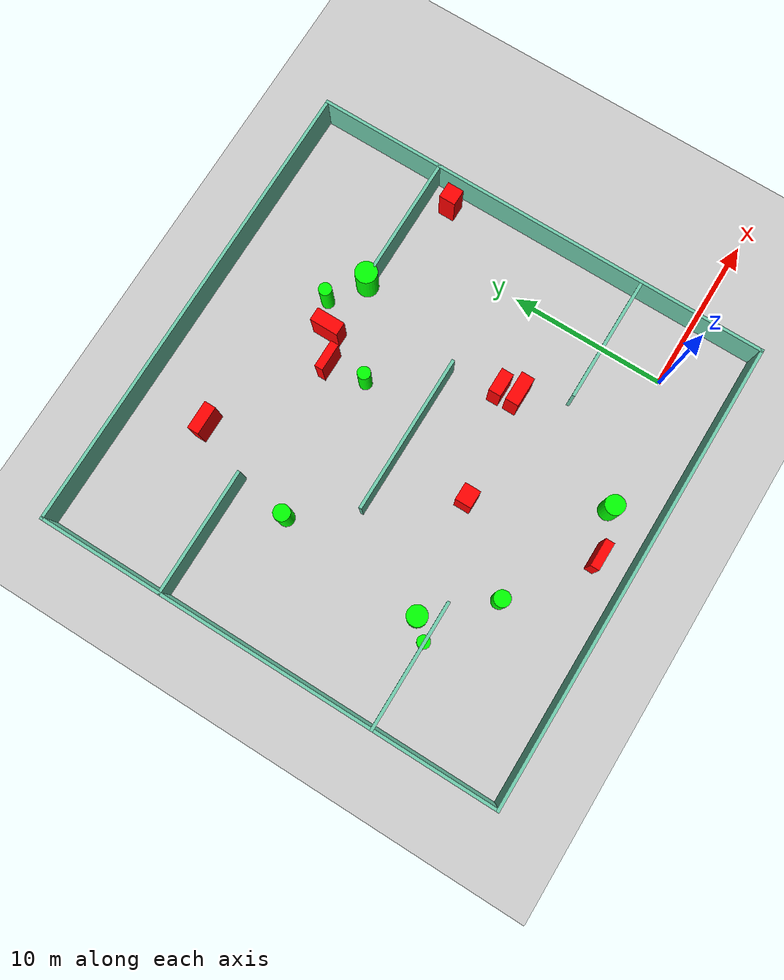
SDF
<sdf version="1.7">
 <world name="default">
  <light name="sun" type="directional">
   <pose>0 0 10 0 -0 0</pose>
   <diffuse>0.8 0.8 0.8 1</diffuse>
   <specular>0.2 0.2 0.2 1</specular>
   <attenuation>
    <range>1000</range>
    <constant>0.9</constant>
    <linear>0.01</linear>
    <quadratic>0.001</quadratic>
   </attenuation>
   <direction>-0.5 0.1 -0.9</direction>
   <spot><inner_angle>0</inner_angle><outer_angle>0</outer_angle><falloff>0</falloff></spot>
  </light>
  <model name="ground_plane">
   <static>1</static>
   <link name="link">
    <collision name="collision">
     <geometry><plane><normal>0 0 1</normal><size>100 100</size></plane></geometry>
     <surface>
      <contact><collide_bitmask>65535</collide_bitmask></contact>
      <friction><ode><mu>100</mu><mu2>50</mu2></ode></friction>
     </surface>
    </collision>
    <visual name="visual">
     <cast_shadows>0</cast_shadows>
     <geometry><plane><normal>0 0 1</normal><size>100 100</size></plane></geometry>
     <material>
      <script><uri>file://media/materials/scripts/gazebo.material</uri><name>Gazebo/Grey</name></script>
     </material>
    </visual>
   </link>
  </model>
  <gravity>0 0 -9.8</gravity>
  <magnetic_field>6e-06 2.3e-05 -4.2e-05</magnetic_field>
  <atmosphere type="adiabatic"/>
  <physics type="ode">
   <max_step_size>0.001</max_step_size>
   <real_time_factor>1</real_time_factor>
   <real_time_update_rate>1000</real_time_update_rate>
  </physics>
  <scene><ambient>0.4 0.4 0.4 1</ambient><background>0.7 0.7 0.7 1</background><shadows>1</shadows></scene>
  <spherical_coordinates>
   <surface_model>EARTH_WGS84</surface_model>
   <latitude_deg>0</latitude_deg>
   <longitude_deg>0</longitude_deg>
   <elevation>0</elevation>
   <heading_deg>0</heading_deg>
  </spherical_coordinates>
  <model name="my_base_walls">
   <link name="Wall_10">
    <collision name="Wall_10_Collision">
     <geometry><box><size>8.2 0.2 2.5</size></box></geometry>
     <pose>0 0 1.25 0 -0 0</pose>
    </collision>
    <visual name="Wall_10_Visual">
     <pose>0 0 1.25 0 -0 0</pose>
     <geometry><box><size>8.2 0.2 2.5</size></box></geometry>
     <material>
      <script><uri>file://media/materials/scripts/gazebo.material</uri><name>Gazebo/Grey</name></script>
      <ambient>0.435294 0.796078 0.67451 1</ambient>
     </material>
     <meta><layer>0</layer></meta>
    </visual>
    <pose>-11 -7 0 0 -0 0</pose>
   </link>
   <link name="Wall_12">
    <collision name="Wall_12_Collision">
     <geometry><box><size>8.2 0.2 2.5</size></box></geometry>
     <pose>0 0 1.25 0 -0 0</pose>
    </collision>
    <visual name="Wall_12_Visual">
     <pose>0 0 1.25 0 -0 0</pose>
     <geometry><box><size>8.2 0.2 2.5</size></box></geometry>
     <material>
      <script><uri>file://media/materials/scripts/gazebo.material</uri><name>Gazebo/Grey</name></script>
      <ambient>0.435294 0.796078 0.67451 1</ambient>
     </material>
     <meta><layer>0</layer></meta>
    </visual>
    <pose>-11 7 0 0 -0 0</pose>
   </link>
   <link name="Wall_14">
    <collision name="Wall_14_Collision">
     <geometry><box><size>8.2 0.2 2.5</size></box></geometry>
     <pose>0 0 1.25 0 -0 0</pose>
    </collision>
    <visual name="Wall_14_Visual">
     <pose>0 0 1.25 0 -0 0</pose>
     <geometry><box><size>8.2 0.2 2.5</size></box></geometry>
     <material>
      <script><uri>file://media/materials/scripts/gazebo.material</uri><name>Gazebo/Grey</name></script>
      <ambient>0.435294 0.796078 0.67451 1</ambient>
     </material>
     <meta><layer>0</layer></meta>
    </visual>
    <pose>11 7 0 0 -0 3.14159</pose>
   </link>
   <link name="Wall_16">
    <collision name="Wall_16_Collision">
     <geometry><box><size>10.2 0.2 2.5</size></box></geometry>
     <pose>0 0 1.25 0 -0 0</pose>
    </collision>
    <visual name="Wall_16_Visual">
     <pose>0 0 1.25 0 -0 0</pose>
     <geometry><box><size>10.2 0.2 2.5</size></box></geometry>
     <material>
      <script><uri>file://media/materials/scripts/gazebo.material</uri><name>Gazebo/Grey</name></script>
      <ambient>0.435294 0.796078 0.67451 1</ambient>
     </material>
     <meta><layer>0</layer></meta>
    </visual>
    <pose>0 0 0 0 -0 3.14159</pose>
   </link>
   <link name="Wall_2">
    <collision name="Wall_2_Collision">
     <geometry><box><size>30.2 0.2 2.5</size></box></geometry>
     <pose>0 0 1.25 0 -0 0</pose>
    </collision>
    <visual name="Wall_2_Visual">
     <pose>0 0 1.25 0 -0 0</pose>
     <geometry><box><size>30.2 0.2 2.5</size></box></geometry>
     <material>
      <script><uri>file://media/materials/scripts/gazebo.material</uri><name>Gazebo/Grey</name></script>
      <ambient>0.435294 0.796078 0.67451 1</ambient>
     </material>
     <meta><layer>0</layer></meta>
    </visual>
    <pose>0 -15 0 0 -0 3.14159</pose>
   </link>
   <link name="Wall_3">
    <collision name="Wall_3_Collision">
     <geometry><box><size>30.2 0.2 2.5</size></box></geometry>
     <pose>0 0 1.25 0 -0 0</pose>
    </collision>
    <visual name="Wall_3_Visual">
     <pose>0 0 1.25 0 -0 0</pose>
     <geometry><box><size>30.2 0.2 2.5</size></box></geometry>
     <material>
      <script><uri>file://media/materials/scripts/gazebo.material</uri><name>Gazebo/Grey</name></script>
      <ambient>0.435294 0.796078 0.67451 1</ambient>
     </material>
     <meta><layer>0</layer></meta>
    </visual>
    <pose>-15 0 0 0 -0 1.5708</pose>
   </link>
   <link name="Wall_4">
    <collision name="Wall_4_Collision">
     <geometry><box><size>30.2 0.2 2.5</size></box></geometry>
     <pose>0 0 1.25 0 -0 0</pose>
    </collision>
    <visual name="Wall_4_Visual">
     <pose>0 0 1.25 0 -0 0</pose>
     <geometry><box><size>30.2 0.2 2.5</size></box></geometry>
     <material>
      <script><uri>file://media/materials/scripts/gazebo.material</uri><name>Gazebo/Grey</name></script>
      <ambient>0.435294 0.796078 0.67451 1</ambient>
     </material>
     <meta><layer>0</layer></meta>
    </visual>
    <pose>0 15 0 0 -0 0</pose>
   </link>
   <link name="Wall_6">
    <collision name="Wall_6_Collision">
     <geometry><box><size>30.2 0.2 2.5</size></box></geometry>
     <pose>0 0 1.25 0 -0 0</pose>
    </collision>
    <visual name="Wall_6_Visual">
     <pose>0 0 1.25 0 -0 0</pose>
     <geometry><box><size>30.2 0.2 2.5</size></box></geometry>
     <material>
      <script><uri>file://media/materials/scripts/gazebo.material</uri><name>Gazebo/Grey</name></script>
      <ambient>0.435294 0.796078 0.67451 1</ambient>
     </material>
     <meta><layer>0</layer></meta>
    </visual>
    <pose>15 0 0 0 -0 1.5708</pose>
   </link>
   <link name="Wall_8">
    <collision name="Wall_8_Collision">
     <geometry><box><size>8.2 0.2 2.5</size></box></geometry>
     <pose>0 0 1.25 0 -0 0</pose>
    </collision>
    <visual name="Wall_8_Visual">
     <pose>0 0 1.25 0 -0 0</pose>
     <geometry><box><size>8.2 0.2 2.5</size></box></geometry>
     <material>
      <script><uri>file://media/materials/scripts/gazebo.material</uri><name>Gazebo/Grey</name></script>
      <ambient>0.435294 0.796078 0.67451 1</ambient>
     </material>
     <meta><layer>0</layer></meta>
    </visual>
    <pose>11 -7 0 0 -0 3.14159</pose>
   </link>
   <static>1</static>
   <pose>-11 11 0 0 -0 0</pose>
  </model>
  <model name="cylinder1">
   <static>1</static>
   <link name="link">
    <inertial>
     <mass>1</mass>
     <inertia><ixx>0.5</ixx><ixy>0</ixy><ixz>0</ixz><iyy>0.5</iyy><iyz>0</iyz><izz>1</izz></inertia>
    </inertial>
    <collision name="collision">
     <geometry><cylinder><radius>0.6325697757814563</radius><length>2.5</length></cylinder></geometry>
    </collision>
    <visual name="visual">
     <geometry><cylinder><radius>0.6325697757814563</radius><length>2.5</length></cylinder></geometry>
     <material>
      <ambient>0 1 0 1</ambient>
      <diffuse>0 1 0 1</diffuse>
      <specular>0.1 0.1 0.1 1</specular>
      <emissive>0 0 0 0</emissive>
     </material>
    </visual>
   </link>
   <pose>-19.505224780085193 5.1049068621273825 1.25 0 0 0</pose>
  </model>
  <model name="cylinder2">
   <static>1</static>
   <link name="link">
    <inertial>
     <mass>1</mass>
     <inertia><ixx>0.5</ixx><ixy>0</ixy><ixz>0</ixz><iyy>0.5</iyy><iyz>0</iyz><izz>1</izz></inertia>
    </inertial>
    <collision name="collision">
     <geometry><cylinder><radius>0.40173289101197013</radius><length>2.5</length></cylinder></geometry>
    </collision>
    <visual name="visual">
     <geometry><cylinder><radius>0.40173289101197013</radius><length>2.5</length></cylinder></geometry>
     <material>
      <ambient>0 1 0 1</ambient>
      <diffuse>0 1 0 1</diffuse>
      <specular>0.1 0.1 0.1 1</specular>
      <emissive>0 0 0 0</emissive>
     </material>
    </visual>
   </link>
   <pose>-20.5317450168027 4.053771220486489 1.25 0 0 0</pose>
  </model>
  <model name="cylinder3">
   <static>1</static>
   <link name="link">
    <inertial>
     <mass>1</mass>
     <inertia><ixx>0.5</ixx><ixy>0</ixy><ixz>0</ixz><iyy>0.5</iyy><iyz>0</iyz><izz>1</izz></inertia>
    </inertial>
    <collision name="collision">
     <geometry><cylinder><radius>0.5216230944143454</radius><length>2.5</length></cylinder></geometry>
    </collision>
    <visual name="visual">
     <geometry><cylinder><radius>0.5216230944143454</radius><length>2.5</length></cylinder></geometry>
     <material>
      <ambient>0 1 0 1</ambient>
      <diffuse>0 1 0 1</diffuse>
      <specular>0.1 0.1 0.1 1</specular>
      <emissive>0 0 0 0</emissive>
     </material>
    </visual>
   </link>
   <pose>-18.62582001643144 14.63782390426006 1.25 0 0 0</pose>
  </model>
  <model name="cylinder4">
   <static>1</static>
   <link name="link">
    <inertial>
     <mass>1</mass>
     <inertia><ixx>0.5</ixx><ixy>0</ixy><ixz>0</ixz><iyy>0.5</iyy><iyz>0</iyz><izz>1</izz></inertia>
    </inertial>
    <collision name="collision">
     <geometry><cylinder><radius>0.4103274243022824</radius><length>2.5</length></cylinder></geometry>
    </collision>
    <visual name="visual">
     <geometry><cylinder><radius>0.4103274243022824</radius><length>2.5</length></cylinder></geometry>
     <material>
      <ambient>0 1 0 1</ambient>
      <diffuse>0 1 0 1</diffuse>
      <specular>0.1 0.1 0.1 1</specular>
      <emissive>0 0 0 0</emissive>
     </material>
    </visual>
   </link>
   <pose>-9.292394849176507 15.016661860880305 1.25 0 0 0</pose>
  </model>
  <model name="cylinder5">
   <static>1</static>
   <link name="link">
    <inertial>
     <mass>1</mass>
     <inertia><ixx>0.5</ixx><ixy>0</ixy><ixz>0</ixz><iyy>0.5</iyy><iyz>0</iyz><izz>1</izz></inertia>
    </inertial>
    <collision name="collision">
     <geometry><cylinder><radius>0.4085831700657161</radius><length>2.5</length></cylinder></geometry>
    </collision>
    <visual name="visual">
     <geometry><cylinder><radius>0.4085831700657161</radius><length>2.5</length></cylinder></geometry>
     <material>
      <ambient>0 1 0 1</ambient>
      <diffuse>0 1 0 1</diffuse>
      <specular>0.1 0.1 0.1 1</specular>
      <emissive>0 0 0 0</emissive>
     </material>
    </visual>
   </link>
   <pose>-6.178337498701161 19.67866425020443 1.25 0 0 0</pose>
  </model>
  <model name="cylinder6">
   <static>1</static>
   <link name="link">
    <inertial>
     <mass>1</mass>
     <inertia><ixx>0.5</ixx><ixy>0</ixy><ixz>0</ixz><iyy>0.5</iyy><iyz>0</iyz><izz>1</izz></inertia>
    </inertial>
    <collision name="collision">
     <geometry><cylinder><radius>0.5095919048869062</radius><length>2.5</length></cylinder></geometry>
    </collision>
    <visual name="visual">
     <geometry><cylinder><radius>0.5095919048869062</radius><length>2.5</length></cylinder></geometry>
     <material>
      <ambient>0 1 0 1</ambient>
      <diffuse>0 1 0 1</diffuse>
      <specular>0.1 0.1 0.1 1</specular>
      <emissive>0 0 0 0</emissive>
     </material>
    </visual>
   </link>
   <pose>-16.21095405447989 1.5647244906020212 1.25 0 0 0</pose>
  </model>
  <model name="cylinder7">
   <static>1</static>
   <link name="link">
    <inertial>
     <mass>1</mass>
     <inertia><ixx>0.5</ixx><ixy>0</ixy><ixz>0</ixz><iyy>0.5</iyy><iyz>0</iyz><izz>1</izz></inertia>
    </inertial>
    <collision name="collision">
     <geometry><cylinder><radius>0.6968690253352717</radius><length>2.5</length></cylinder></geometry>
    </collision>
    <visual name="visual">
     <geometry><cylinder><radius>0.6968690253352717</radius><length>2.5</length></cylinder></geometry>
     <material>
      <ambient>0 1 0 1</ambient>
      <diffuse>0 1 0 1</diffuse>
      <specular>0.1 0.1 0.1 1</specular>
      <emissive>0 0 0 0</emissive>
     </material>
    </visual>
   </link>
   <pose>-4.039233347050908 18.170822488954386 1.25 0 0 0</pose>
  </model>
  <model name="cylinder8">
   <static>1</static>
   <link name="link">
    <inertial>
     <mass>1</mass>
     <inertia><ixx>0.5</ixx><ixy>0</ixy><ixz>0</ixz><iyy>0.5</iyy><iyz>0</iyz><izz>1</izz></inertia>
    </inertial>
    <collision name="collision">
     <geometry><cylinder><radius>0.6131796713044495</radius><length>2.5</length></cylinder></geometry>
    </collision>
    <visual name="visual">
     <geometry><cylinder><radius>0.6131796713044495</radius><length>2.5</length></cylinder></geometry>
     <material>
      <ambient>0 1 0 1</ambient>
      <diffuse>0 1 0 1</diffuse>
      <specular>0.1 0.1 0.1 1</specular>
      <emissive>0 0 0 0</emissive>
     </material>
    </visual>
   </link>
   <pose>-8.347913297689566 -1.1894641730028943 1.25 0 0 0</pose>
  </model>
  <model name="box1">
   <static>1</static>
   <link name="link">
    <inertial>
     <mass>1</mass>
     <inertia><ixx>0.083</ixx><ixy>0</ixy><ixz>0</ixz><iyy>0.083</iyy><iyz>0</iyz><izz>0.083</izz></inertia>
    </inertial>
    <collision name="collision">
     <geometry><box><size>0.8526393377195678 1.831514056432484 2.5</size></box></geometry>
    </collision>
    <visual name="visual">
     <geometry><box><size>0.8526393377195678 1.831514056432484 2.5</size></box></geometry>
     <material>
      <ambient>1 0 0 1</ambient>
      <diffuse>1 0 0 1</diffuse>
      <specular>0.1 0.1 0.1 1</specular>
      <emissive>0 0 0 0</emissive>
     </material>
    </visual>
    <sensor name="my_contact" type="contact">
     <contact><collision>box_collision</collision><topic>__default_topic__</topic></contact>
    </sensor>
   </link>
   <pose>-7.780096416396349 18.506658113280924 1.25 0 0 0</pose>
  </model>
  <model name="box2">
   <static>1</static>
   <link name="link">
    <inertial>
     <mass>1</mass>
     <inertia><ixx>0.083</ixx><ixy>0</ixy><ixz>0</ixz><iyy>0.083</iyy><iyz>0</iyz><izz>0.083</izz></inertia>
    </inertial>
    <collision name="collision">
     <geometry><box><size>1.7677450465691815 0.5290525430872424 2.5</size></box></geometry>
    </collision>
    <visual name="visual">
     <geometry><box><size>1.7677450465691815 0.5290525430872424 2.5</size></box></geometry>
     <material>
      <ambient>1 0 0 1</ambient>
      <diffuse>1 0 0 1</diffuse>
      <specular>0.1 0.1 0.1 1</specular>
      <emissive>0 0 0 0</emissive>
     </material>
    </visual>
    <sensor name="my_contact" type="contact">
     <contact><collision>box_collision</collision><topic>__default_topic__</topic></contact>
    </sensor>
   </link>
   <pose>-9.536492092163044 17.42823035283055 1.25 0 0 0</pose>
  </model>
  <model name="box3">
   <static>1</static>
   <link name="link">
    <inertial>
     <mass>1</mass>
     <inertia><ixx>0.083</ixx><ixy>0</ixy><ixz>0</ixz><iyy>0.083</iyy><iyz>0</iyz><izz>0.083</izz></inertia>
    </inertial>
    <collision name="collision">
     <geometry><box><size>1.7839892114821225 0.5663711240990119 2.5</size></box></geometry>
    </collision>
    <visual name="visual">
     <geometry><box><size>1.7839892114821225 0.5663711240990119 2.5</size></box></geometry>
     <material>
      <ambient>1 0 0 1</ambient>
      <diffuse>1 0 0 1</diffuse>
      <specular>0.1 0.1 0.1 1</specular>
      <emissive>0 0 0 0</emissive>
     </material>
    </visual>
    <sensor name="my_contact" type="contact">
     <contact><collision>box_collision</collision><topic>__default_topic__</topic></contact>
    </sensor>
   </link>
   <pose>-11.150664945340047 -1.9673109626688352 1.25 0 0 0</pose>
  </model>
  <model name="box4">
   <static>1</static>
   <link name="link">
    <inertial>
     <mass>1</mass>
     <inertia><ixx>0.083</ixx><ixy>0</ixy><ixz>0</ixz><iyy>0.083</iyy><iyz>0</iyz><izz>0.083</izz></inertia>
    </inertial>
    <collision name="collision">
     <geometry><box><size>1.89623199195968 0.8549265784721498 2.5</size></box></geometry>
    </collision>
    <visual name="visual">
     <geometry><box><size>1.89623199195968 0.8549265784721498 2.5</size></box></geometry>
     <material>
      <ambient>1 0 0 1</ambient>
      <diffuse>1 0 0 1</diffuse>
      <specular>0.1 0.1 0.1 1</specular>
      <emissive>0 0 0 0</emissive>
     </material>
    </visual>
    <sensor name="my_contact" type="contact">
     <contact><collision>box_collision</collision><topic>__default_topic__</topic></contact>
    </sensor>
   </link>
   <pose>-5.3557510659762215 6.831656920084878 1.25 0 0 0</pose>
  </model>
  <model name="box5">
   <static>1</static>
   <link name="link">
    <inertial>
     <mass>1</mass>
     <inertia><ixx>0.083</ixx><ixy>0</ixy><ixz>0</ixz><iyy>0.083</iyy><iyz>0</iyz><izz>0.083</izz></inertia>
    </inertial>
    <collision name="collision">
     <geometry><box><size>1.1247215562902397 1.0365995619055877 2.5</size></box></geometry>
    </collision>
    <visual name="visual">
     <geometry><box><size>1.1247215562902397 1.0365995619055877 2.5</size></box></geometry>
     <material>
      <ambient>1 0 0 1</ambient>
      <diffuse>1 0 0 1</diffuse>
      <specular>0.1 0.1 0.1 1</specular>
      <emissive>0 0 0 0</emissive>
     </material>
    </visual>
    <sensor name="my_contact" type="contact">
     <contact><collision>box_collision</collision><topic>__default_topic__</topic></contact>
    </sensor>
   </link>
   <pose>-12.25083975438437 6.181833697602245 1.25 0 0 0</pose>
  </model>
  <model name="box6">
   <static>1</static>
   <link name="link">
    <inertial>
     <mass>1</mass>
     <inertia><ixx>0.083</ixx><ixy>0</ixy><ixz>0</ixz><iyy>0.083</iyy><iyz>0</iyz><izz>0.083</izz></inertia>
    </inertial>
    <collision name="collision">
     <geometry><box><size>1.8230381540492917 0.7377200595315196 2.5</size></box></geometry>
    </collision>
    <visual name="visual">
     <geometry><box><size>1.8230381540492917 0.7377200595315196 2.5</size></box></geometry>
     <material>
      <ambient>1 0 0 1</ambient>
      <diffuse>1 0 0 1</diffuse>
      <specular>0.1 0.1 0.1 1</specular>
      <emissive>0 0 0 0</emissive>
     </material>
    </visual>
    <sensor name="my_contact" type="contact">
     <contact><collision>box_collision</collision><topic>__default_topic__</topic></contact>
    </sensor>
   </link>
   <pose>-16.438060209063796 21.556061501192627 1.25 0 0 0</pose>
  </model>
  <model name="box7">
   <static>1</static>
   <link name="link">
    <inertial>
     <mass>1</mass>
     <inertia><ixx>0.083</ixx><ixy>0</ixy><ixz>0</ixz><iyy>0.083</iyy><iyz>0</iyz><izz>0.083</izz></inertia>
    </inertial>
    <collision name="collision">
     <geometry><box><size>1.511529483830587 0.7903670291917047 2.5</size></box></geometry>
    </collision>
    <visual name="visual">
     <geometry><box><size>1.511529483830587 0.7903670291917047 2.5</size></box></geometry>
     <material>
      <ambient>1 0 0 1</ambient>
      <diffuse>1 0 0 1</diffuse>
      <specular>0.1 0.1 0.1 1</specular>
      <emissive>0 0 0 0</emissive>
     </material>
    </visual>
    <sensor name="my_contact" type="contact">
     <contact><collision>box_collision</collision><topic>__default_topic__</topic></contact>
    </sensor>
   </link>
   <pose>-5.589029757350218 7.955033896602618 1.25 0 0 0</pose>
  </model>
  <model name="box8">
   <static>1</static>
   <link name="link">
    <inertial>
     <mass>1</mass>
     <inertia><ixx>0.083</ixx><ixy>0</ixy><ixz>0</ixz><iyy>0.083</iyy><iyz>0</iyz><izz>0.083</izz></inertia>
    </inertial>
    <collision name="collision">
     <geometry><box><size>1.039199230011062 1.0616617652945104 2.5</size></box></geometry>
    </collision>
    <visual name="visual">
     <geometry><box><size>1.039199230011062 1.0616617652945104 2.5</size></box></geometry>
     <material>
      <ambient>1 0 0 1</ambient>
      <diffuse>1 0 0 1</diffuse>
      <specular>0.1 0.1 0.1 1</specular>
      <emissive>0 0 0 0</emissive>
     </material>
    </visual>
    <sensor name="my_contact" type="contact">
     <contact><collision>box_collision</collision><topic>__default_topic__</topic></contact>
    </sensor>
   </link>
   <pose>2.8508742512689977 16.458478652888537 1.25 0 0 0</pose>
  </model>
 </world>
</sdf>
